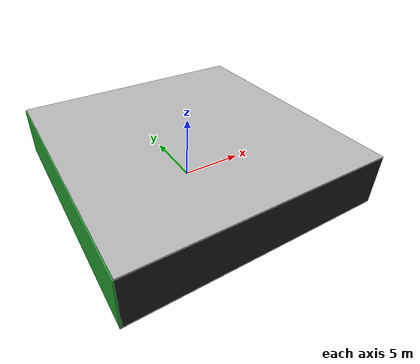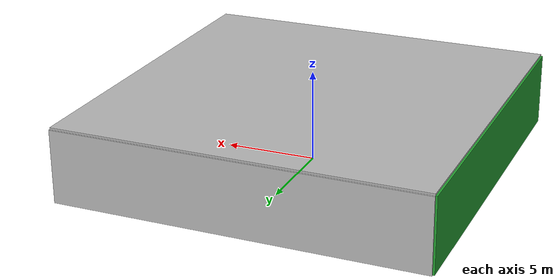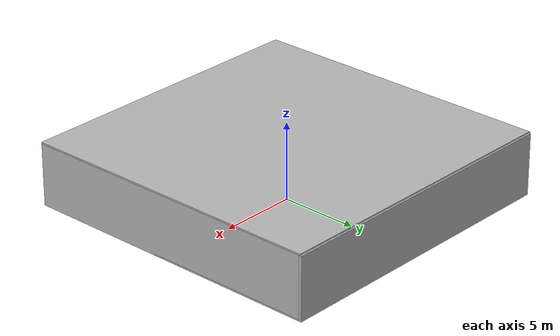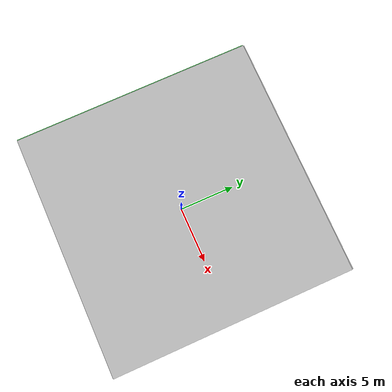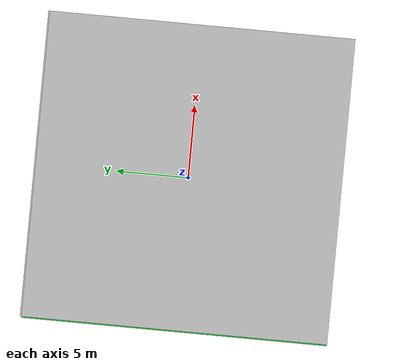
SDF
<sdf version="1.4">
 <world name="default">
  <physics type="ode">
   <max_step_size>0.001</max_step_size>
   <real_time_factor>1</real_time_factor>
   <real_time_update_rate>1000</real_time_update_rate>
   <gravity>0 0 -9.8</gravity>
  </physics>
  <scene><ambient>0.4 0.4 0.4 1</ambient><background>0.7 0.7 0.7 1</background><shadows>1</shadows></scene>
  <model name="Surrounding">
   <static>1</static>
   <link name="Ceiling">
    <collision name="Ceiling_Collision"><geometry><box><size>20 20 0.1</size></box></geometry></collision>
    <visual name="Ceiling_Visual">
     <geometry><box><size>20 20 0.1</size></box></geometry>
     <material>
      <script><uri>file://media/materials/scripts/gazebo.material</uri><name>Gazebo/JointAnchor</name></script>
     </material>
    </visual>
    <pose>0 0 4.05 0 0 0</pose>
   </link>
   <link name="Wall_South">
    <collision name="Wall_South_Collision">
     <geometry><box><size>20 0 4</size></box></geometry>
     <pose>0 0 2 0 -0 0</pose>
    </collision>
    <visual name="Wall_South_Visual">
     <pose>0 0 2 0 -0 0</pose>
     <geometry><box><size>20 0 4</size></box></geometry>
     <material>
      <script><uri>file://media/materials/scripts/gazebo.material</uri><name>Gazebo/Black</name></script>
     </material>
    </visual>
    <velocity_decay><linear>0</linear><angular>0</angular></velocity_decay>
    <pose>0 -10 0 0 -0 0</pose>
   </link>
   <link name="Wall_East">
    <collision name="Wall_21_Collision">
     <geometry><box><size>20 0 4</size></box></geometry>
     <pose>0 0 2 0 -0 0</pose>
    </collision>
    <visual name="Wall_21_Visual">
     <pose>0 0 2 0 -0 0</pose>
     <geometry><box><size>20 0 4</size></box></geometry>
     <material>
      <script><uri>file://media/materials/scripts/gazebo.material</uri><name>Gazebo/Pioneer2Body</name></script>
     </material>
    </visual>
    <velocity_decay><linear>0</linear><angular>0</angular></velocity_decay>
    <pose>10 0 0 0 -0 1.5708</pose>
   </link>
   <link name="Wall_North">
    <collision name="Wall_22_Collision">
     <geometry><box><size>20 0.2 4</size></box></geometry>
     <pose>0 0 2 0 -0 0</pose>
    </collision>
    <visual name="Wall_22_Visual">
     <pose>0 0 2 0 -0 0</pose>
     <geometry><box><size>20 0.2 4</size></box></geometry>
     <material>
      <script><uri>file://media/materials/scripts/gazebo.material</uri><name>Gazebo/Pioneer2Body</name></script>
     </material>
    </visual>
    <velocity_decay><linear>0</linear><angular>0</angular></velocity_decay>
    <pose>0 10 0 0 -0 0</pose>
   </link>
   <link name="Wall_West">
    <collision name="Wall_23_Collision">
     <geometry><box><size>20 0.2 4</size></box></geometry>
     <pose>0 0 2 0 -0 0</pose>
    </collision>
    <visual name="Wall_23_Visual">
     <pose>0 0 2 0 -0 0</pose>
     <geometry><box><size>20 0.2 4</size></box></geometry>
     <material>
      <script><uri>file://media/materials/scripts/gazebo.material</uri><name>Gazebo/Green</name></script>
     </material>
    </visual>
    <velocity_decay><linear>0</linear><angular>0</angular></velocity_decay>
    <pose>-10 0 0 0 0 -1.5708</pose>
   </link>
   <link name="Ground_link">
    <collision name="collision">
     <pose>0 0 .05 0 -0 0</pose>
     <geometry><box><size>20 20 0.1</size></box></geometry>
    </collision>
    <visual name="visual">
     <pose>0 0 .05 0 -0 0</pose>
     <geometry><box><size>20 20 0.1</size></box></geometry>
     <material>
      <script><uri>file://media/materials/scripts/gazebo.material</uri><name>Gazebo/LightOn</name></script>
     </material>
    </visual>
   </link>
   <static>1</static>
  </model>
  <spherical_coordinates>
   <surface_model>EARTH_WGS84</surface_model>
   <latitude_deg>0</latitude_deg>
   <longitude_deg>0</longitude_deg>
   <elevation>0</elevation>
   <heading_deg>0</heading_deg>
  </spherical_coordinates>
  <light name="lightball_0" type="diffuse">
   <diffuse>0.8 0.8 0.8 1</diffuse>
   <specular>0.2 0.2 0.2 1</specular>
   <attenuation>
    <range>100</range>
    <constant>0.7</constant>
    <linear>0.01</linear>
    <quadratic>0.001</quadratic>
   </attenuation>
   <direction>-0.5 0.1 -0.9</direction>
   <pose>3.66448310133 -5.95273541902 1.33994061801 0 0 0</pose>
  </light>
  <light name="lightball_1" type="diffuse">
   <diffuse>0.8 0.8 0.8 1</diffuse>
   <specular>0.2 0.2 0.2 1</specular>
   <attenuation>
    <range>100</range>
    <constant>0.7</constant>
    <linear>0.01</linear>
    <quadratic>0.001</quadratic>
   </attenuation>
   <direction>-0.5 0.1 -0.9</direction>
   <pose>-4.97642436211 1.6181142976 3.27720482904 0 0 0</pose>
  </light>
  <light name="lightball_2" type="diffuse">
   <diffuse>0.8 0.8 0.8 1</diffuse>
   <specular>0.2 0.2 0.2 1</specular>
   <attenuation>
    <range>100</range>
    <constant>0.7</constant>
    <linear>0.01</linear>
    <quadratic>0.001</quadratic>
   </attenuation>
   <direction>-0.5 0.1 -0.9</direction>
   <pose>-4.78052960484 -4.84055615023 2.9590892836 0 0 0</pose>
  </light>
  <light name="lightball_3" type="diffuse">
   <diffuse>0.8 0.8 0.8 1</diffuse>
   <specular>0.2 0.2 0.2 1</specular>
   <attenuation>
    <range>100</range>
    <constant>0.7</constant>
    <linear>0.01</linear>
    <quadratic>0.001</quadratic>
   </attenuation>
   <direction>-0.5 0.1 -0.9</direction>
   <pose>-0.137137801676 6.59461289907 3.42923237988 0 0 0</pose>
  </light>
  <light name="lightball_4" type="diffuse">
   <diffuse>0.8 0.8 0.8 1</diffuse>
   <specular>0.2 0.2 0.2 1</specular>
   <attenuation>
    <range>100</range>
    <constant>0.7</constant>
    <linear>0.01</linear>
    <quadratic>0.001</quadratic>
   </attenuation>
   <direction>-0.5 0.1 -0.9</direction>
   <pose>5.41230490397 2.64092066018 3.00773920585 0 0 0</pose>
  </light>
  <light name="lightball_5" type="diffuse">
   <diffuse>0.8 0.8 0.8 1</diffuse>
   <specular>0.2 0.2 0.2 1</specular>
   <attenuation>
    <range>100</range>
    <constant>0.7</constant>
    <linear>0.01</linear>
    <quadratic>0.001</quadratic>
   </attenuation>
   <direction>-0.5 0.1 -0.9</direction>
   <pose>7.92390444478 3.95372834499 1.42639001062 0 0 0</pose>
  </light>
  <include><uri>model://cabinet</uri><pose>-3.70394217049 -1.44686389634 0 0 0 2.08501528126</pose></include>
  <include>
   <uri>model://construction_cone</uri>
   <pose>-1.28756161548 -7.67447162935 0 0 0 1.00391859419</pose>
  </include>
  <include><uri>model://table</uri><pose>4.14716961323 -7.46064710098 0 0 0 2.53918745012</pose></include>
  <include><uri>model://cabinet</uri><pose>4.7579296441 5.14406690735 0 0 0 2.66826858399</pose></include>
 </world>
</sdf>

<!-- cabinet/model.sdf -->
<sdf version="1.5">
  <model name="cabinet">
    <static>true</static>
    <link name="cabinet_bottom_plate">
      <inertial>
        <pose>0 0 -1 0 0 0</pose>
        <inertia>
          <ixx>2.050000</ixx>
          <ixy>0</ixy>
          <ixz>0</ixz>
          <iyy>2.050000</iyy>
          <iyz>0</iyz>
          <izz>2.050000</izz>
        </inertia>
        <mass>25.000000</mass>
      </inertial>
      <collision name="cabinet_bottom_plate_geom">
        <pose>0 0 0.010000 0 0 0</pose>
        <geometry>
          <box>
            <size>0.450000 0.450000 0.020000</size>
          </box>
        </geometry>
      </collision>
      <visual name="cabinet_bottom_plate_geom_visual">
        <pose>0 0 0.010000 0 0 0</pose>
        <geometry>
          <box>
            <size>0.450000 0.450000 0.020000</size>
          </box>
        </geometry>
        <material>
          <script>
            <uri>model://media/materials/scripts/gazebo.material</uri>
            <name>Gazebo/Wood</name>
          </script>
        </material>
      </visual>
      <collision name="cabinet_bottom_plate_geom_cabinet_back_plate">
        <pose>0.235000 0 0.510000 0 0 0</pose>
        <geometry>
          <box>
            <size>0.020000 0.450000 1.020000</size>
          </box>
        </geometry>
      </collision>
      <visual name="cabinet_bottom_plate_geom_cabinet_back_plate_visual">
        <pose>0.235000 0 0.510000 0 0 0</pose>
        <geometry>
          <box>
            <size>0.020000 0.450000 1.020000</size>
          </box>
        </geometry>
        <material>
          <script>
            <uri>model://media/materials/scripts/gazebo.material</uri>
            <name>Gazebo/Wood</name>
          </script>
        </material>
      </visual>
      <collision name="cabinet_bottom_plate_geom_cabinet_left_plate">
        <pose>0 0.235000 0.510000 0 0 0</pose>
        <geometry>
          <box>
            <size>0.450000 0.020000 1.020000</size>
          </box>
        </geometry>
      </collision>
      <visual name="cabinet_bottom_plate_geom_cabinet_left_plate_visual">
        <pose>0 0.235000 0.510000 0 0 0</pose>
        <geometry>
          <box>
            <size>0.450000 0.020000 1.020000</size>
          </box>
        </geometry>
        <material>
          <script>
            <uri>model://media/materials/scripts/gazebo.material</uri>
            <name>Gazebo/Wood</name>
          </script>
        </material>
      </visual>
      <collision name="cabinet_bottom_plate_geom_cabinet_middle_plate">
        <pose>0 0 0.510000 0 0 0</pose>
        <geometry>
          <box>
            <size>0.450000 0.450000 0.020000</size>
          </box>
        </geometry>
      </collision>
      <visual name="cabinet_bottom_plate_geom_cabinet_middle_plate_visual">
        <pose>0 0 0.510000 0 0 0</pose>
        <geometry>
          <box>
            <size>0.450000 0.450000 0.020000</size>
          </box>
        </geometry>
        <material>
          <script>
            <uri>model://media/materials/scripts/gazebo.material</uri>
            <name>Gazebo/Wood</name>
          </script>
        </material>
      </visual>
      <collision name="cabinet_bottom_plate_geom_cabinet_right_plate">
        <pose>0 -0.235000 0.510000 0 0 0</pose>
        <geometry>
          <box>
            <size>0.450000 0.020000 1.020000</size>
          </box>
        </geometry>
      </collision>
      <visual name="cabinet_bottom_plate_geom_cabinet_right_plate_visual">
        <pose>0 -0.235000 0.510000 0 0 0</pose>
        <geometry>
          <box>
            <size>0.450000 0.020000 1.020000</size>
          </box>
        </geometry>
        <material>
          <script>
            <uri>model://media/materials/scripts/gazebo.material</uri>
            <name>Gazebo/Wood</name>
          </script>
        </material>
      </visual>
      <collision name="cabinet_bottom_plate_geom_cabinet_top_plate">
        <pose>0 0 1.010000 0 0 0</pose>
        <geometry>
          <box>
            <size>0.450000 0.450000 0.020000</size>
          </box>
        </geometry>
      </collision>
      <visual name="cabinet_bottom_plate_geom_cabinet_top_plate_visual">
        <pose>0 0 1.010000 0 0 0</pose>
        <geometry>
          <box>
            <size>0.450000 0.450000 0.020000</size>
          </box>
        </geometry>
        <material>
          <script>
            <uri>model://media/materials/scripts/gazebo.material</uri>
            <name>Gazebo/Wood</name>
          </script>
        </material>
      </visual>
    </link>
  </model>
</sdf>

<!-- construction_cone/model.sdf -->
<sdf version="1.5">
  <model name="Construction Cone">
    <link name="link">
      <collision name="collision">
        <geometry>
          <mesh>
            <scale>10 10 10</scale>
            <uri>file://isr-testbed/construction_cone/meshes/construction_cone.dae</uri>
          </mesh>
        </geometry>
      </collision>
      <visual name="visual">
        <geometry>
          <mesh>
            <scale>10 10 10</scale>
            <uri>file://isr-testbed/construction_cone/meshes/construction_cone.dae</uri>
          </mesh>
        </geometry>
      </visual>
    </link>
  </model>
</sdf>

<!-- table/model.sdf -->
<sdf version="1.5">
  <model name="table">
    <static>true</static>
    <link name="link">
      <collision name="surface">
        <pose>0 0 1.0 0 0 0</pose>
        <geometry>
          <box>
            <size>1.5 0.8 0.03</size>
          </box>
        </geometry>
        <surface>
          <friction>
            <ode>
              <mu>0.6</mu>
              <mu2>0.6</mu2>
            </ode>
          </friction>
        </surface>
      </collision>
      <visual name="visual1">
        <pose>0 0 1.0 0 0 0</pose>
        <geometry>
          <box>
            <size>1.5 0.8 0.03</size>
          </box>
        </geometry>
        <material>
          <script>
            <uri>model://media/materials/scripts/gazebo.material</uri>
            <name>Gazebo/Wood</name>
          </script>
        </material>
      </visual>
      <collision name="front_left_leg">
        <pose>0.68 0.38 0.5 0 0 0</pose>
        <geometry>
          <cylinder>
            <radius>0.02</radius>
            <length>1.0</length>
          </cylinder>
        </geometry>
      </collision>
      <visual name="front_left_leg">
        <pose>0.68 0.38 0.5 0 0 0</pose>
        <geometry>
          <cylinder>
            <radius>0.02</radius>
            <length>1.0</length>
          </cylinder>
        </geometry>
        <material>
          <script>
            <uri>model://media/materials/scripts/gazebo.material</uri>
            <name>Gazebo/Grey</name>
          </script>
        </material>
      </visual>
      <collision name="front_right_leg">
        <pose>0.68 -0.38 0.5 0 0 0</pose>
        <geometry>
          <cylinder>
            <radius>0.02</radius>
            <length>1.0</length>
          </cylinder>
        </geometry>
      </collision>
      <visual name="front_right_leg">
        <pose>0.68 -0.38 0.5 0 0 0</pose>
        <geometry>
          <cylinder>
            <radius>0.02</radius>
            <length>1.0</length>
          </cylinder>
        </geometry>
        <material>
          <script>
            <uri>model://media/materials/scripts/gazebo.material</uri>
            <name>Gazebo/Grey</name>
          </script>
        </material>
      </visual>
      <collision name="back_right_leg">
        <pose>-0.68 -0.38 0.5 0 0 0</pose>
        <geometry>
          <cylinder>
            <radius>0.02</radius>
            <length>1.0</length>
          </cylinder>
        </geometry>
      </collision>
      <visual name="back_right_leg">
        <pose>-0.68 -0.38 0.5 0 0 0</pose>
        <geometry>
          <cylinder>
            <radius>0.02</radius>
            <length>1.0</length>
          </cylinder>
        </geometry>
        <material>
          <script>
            <uri>model://media/materials/scripts/gazebo.material</uri>
            <name>Gazebo/Grey</name>
          </script>
        </material>
      </visual>
      <collision name="back_left_leg">
        <pose>-0.68 0.38 0.5 0 0 0</pose>
        <geometry>
          <cylinder>
            <radius>0.02</radius>
            <length>1.0</length>
          </cylinder>
        </geometry>
      </collision>
      <visual name="back_left_leg">
        <pose>-0.68 0.38 0.5 0 0 0</pose>
        <geometry>
          <cylinder>
            <radius>0.02</radius>
            <length>1.0</length>
          </cylinder>
        </geometry>
        <material>
          <script>
            <uri>model://media/materials/scripts/gazebo.material</uri>
            <name>Gazebo/Grey</name>
          </script>
        </material>
      </visual>
    </link>
  </model>
</sdf>
